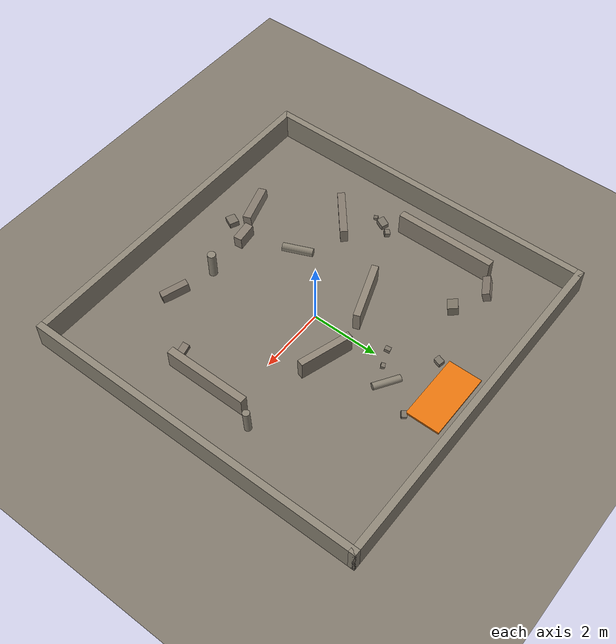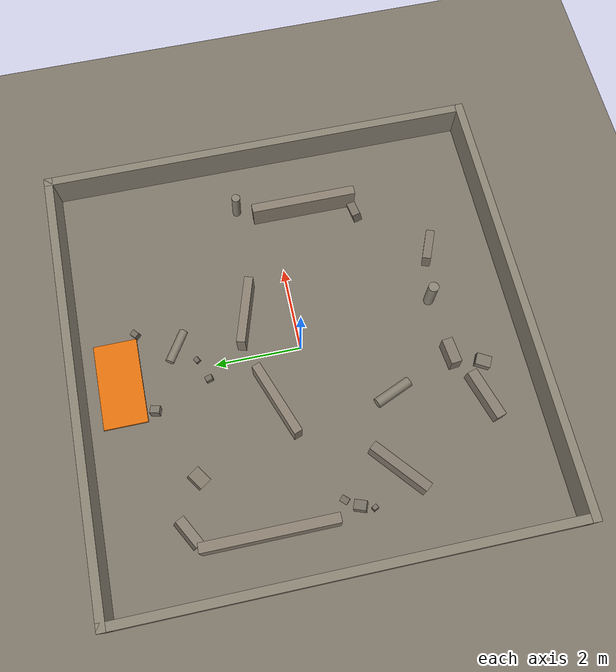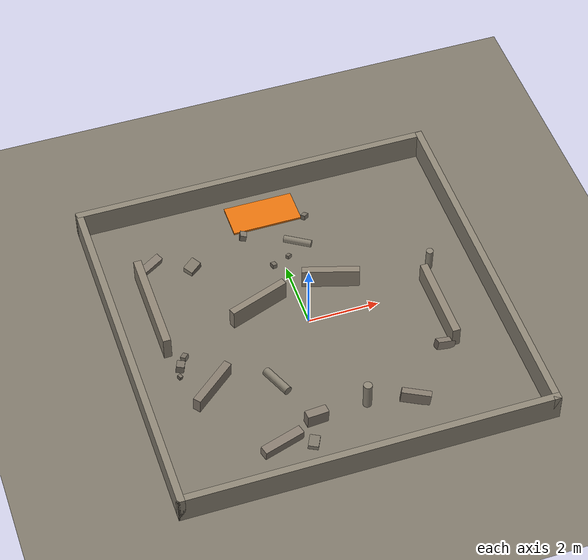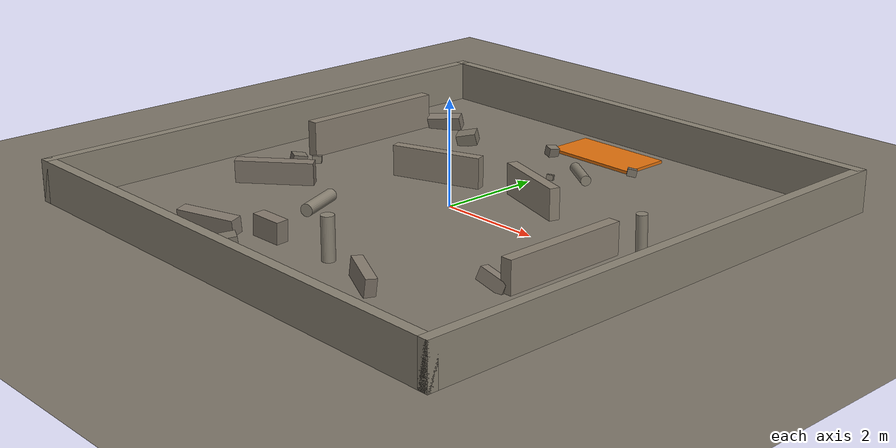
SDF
<?xml version="1.0" ?>
<!--
  earthquake_world.sdf
  Post-Earthquake Urban Scouting Environment
  Gazebo Fortress (Ignition) compatible
-->
<sdf version="1.8">
  <world name="earthquake_world">

    <!-- Physics -->
    <physics name="ode_physics" type="ode" default="true">
      <max_step_size>0.004</max_step_size>
      <real_time_factor>1.0</real_time_factor>
      <real_time_update_rate>250</real_time_update_rate>
    </physics>

    <!-- Plugins required for Fortress -->
    <plugin
      filename="ignition-gazebo-physics-system"
      name="ignition::gazebo::systems::Physics">
    </plugin>
    <plugin
      filename="ignition-gazebo-user-commands-system"
      name="ignition::gazebo::systems::UserCommands">
    </plugin>
    <plugin
      filename="ignition-gazebo-scene-broadcaster-system"
      name="ignition::gazebo::systems::SceneBroadcaster">
    </plugin>
    <plugin
      filename="ignition-gazebo-sensors-system"
      name="ignition::gazebo::systems::Sensors">
      <render_engine>ogre2</render_engine>
    </plugin>
    <plugin
      filename="ignition-gazebo-imu-system"
      name="ignition::gazebo::systems::Imu">
    </plugin>

    <!-- Scene -->
    <scene>
      <ambient>0.35 0.32 0.28 1.0</ambient>
      <background>0.55 0.50 0.42 1.0</background>
      <shadows>false</shadows>
    </scene>

    <!-- Sun -->
    <light name="sun" type="directional">
      <cast_shadows>false</cast_shadows>
      <pose>0 0 15 0 0 0</pose>
      <diffuse>0.8 0.75 0.65 1</diffuse>
      <specular>0.2 0.2 0.2 1</specular>
      <direction>-0.5 0.3 -0.8</direction>
      <attenuation>
        <range>1000</range>
        <constant>0.9</constant>
        <linear>0.01</linear>
        <quadratic>0.001</quadratic>
      </attenuation>
    </light>

    <light name="fill_light" type="directional">
      <cast_shadows>false</cast_shadows>
      <pose>0 0 10 0 0 0</pose>
      <diffuse>0.3 0.28 0.25 1</diffuse>
      <specular>0.05 0.05 0.04 1</specular>
      <direction>0.5 -0.3 -0.6</direction>
    </light>

    <!-- Ground plane -->
    <model name="ground_plane">
      <static>true</static>
      <link name="link">
        <collision name="collision">
          <geometry>
            <plane><normal>0 0 1</normal><size>100 100</size></plane>
          </geometry>
          <surface>
            <friction>
              <ode>
                <mu>0.8</mu>
                <mu2>0.8</mu2>
                <fdir1>0 0 0</fdir1>
                <slip1>0.0</slip1>
                <slip2>0.0</slip2>
              </ode>
              <torsional>
                <coefficient>1.0</coefficient>
                <patch_radius>0.0</patch_radius>
                <surface_radius>0.0</surface_radius>
                <use_patch_radius>true</use_patch_radius>
                <ode><slip>0.0</slip></ode>
              </torsional>
            </friction>
            <contact>
              <ode>
                <min_depth>0.001</min_depth>
                <kp>1000000.0</kp>
                <kd>1.0</kd>
              </ode>
            </contact>
          </surface>
        </collision>
        <visual name="visual">
          <geometry>
            <plane><normal>0 0 1</normal><size>100 100</size></plane>
          </geometry>
          <material>
            <ambient>0.45 0.42 0.38 1</ambient>
            <diffuse>0.50 0.47 0.42 1</diffuse>
          </material>
        </visual>
      </link>
    </model>

    <!-- ── PERIMETER WALLS ── -->
    <model name="wall_north">
      <static>true</static><pose>0 5.1 0.40 0 0 0</pose>
      <link name="link">
        <collision name="col"><geometry><box><size>10.4 0.20 0.80</size></box></geometry></collision>
        <visual name="vis"><geometry><box><size>10.4 0.20 0.80</size></box></geometry>
          <material><ambient>0.50 0.47 0.42 1</ambient><diffuse>0.55 0.52 0.46 1</diffuse></material></visual>
      </link>
    </model>

    <model name="wall_south">
      <static>true</static><pose>0 -5.1 0.40 0 0 0</pose>
      <link name="link">
        <collision name="col"><geometry><box><size>10.4 0.20 0.80</size></box></geometry></collision>
        <visual name="vis"><geometry><box><size>10.4 0.20 0.80</size></box></geometry>
          <material><ambient>0.50 0.47 0.42 1</ambient><diffuse>0.55 0.52 0.46 1</diffuse></material></visual>
      </link>
    </model>

    <model name="wall_west">
      <static>true</static><pose>-5.1 0 0.40 0 0 0</pose>
      <link name="link">
        <collision name="col"><geometry><box><size>0.20 10.4 0.80</size></box></geometry></collision>
        <visual name="vis"><geometry><box><size>0.20 10.4 0.80</size></box></geometry>
          <material><ambient>0.50 0.47 0.42 1</ambient><diffuse>0.55 0.52 0.46 1</diffuse></material></visual>
      </link>
    </model>

    <model name="wall_east">
      <static>true</static><pose>5.1 0 0.40 0 0 0</pose>
      <link name="link">
        <collision name="col"><geometry><box><size>0.20 10.4 0.80</size></box></geometry></collision>
        <visual name="vis"><geometry><box><size>0.20 10.4 0.80</size></box></geometry>
          <material><ambient>0.50 0.47 0.42 1</ambient><diffuse>0.55 0.52 0.46 1</diffuse></material></visual>
      </link>
    </model>

    <!-- ── OBSTACLE CLUSTER A ── -->
    <model name="wall_chunk_A1">
      <static>true</static><pose>-2.0 -3.8 0.15 0.1 0.0 0.3</pose>
      <link name="link">
        <collision name="col"><geometry><box><size>1.20 0.25 0.30</size></box></geometry></collision>
        <visual name="vis"><geometry><box><size>1.20 0.25 0.30</size></box></geometry>
          <material><ambient>0.48 0.44 0.39 1</ambient><diffuse>0.52 0.48 0.43 1</diffuse></material></visual>
      </link>
    </model>

    <model name="wall_chunk_A2">
      <static>true</static><pose>1.8 -3.5 0.18 -0.08 0.12 -0.4</pose>
      <link name="link">
        <collision name="col"><geometry><box><size>0.80 0.20 0.35</size></box></geometry></collision>
        <visual name="vis"><geometry><box><size>0.80 0.20 0.35</size></box></geometry>
          <material><ambient>0.46 0.43 0.38 1</ambient><diffuse>0.51 0.47 0.42 1</diffuse></material></visual>
      </link>
    </model>

    <model name="wall_chunk_A3">
      <static>true</static><pose>-1.2 -4.0 0.08 0.05 -0.1 1.1</pose>
      <link name="link">
        <collision name="col"><geometry><box><size>0.35 0.28 0.16</size></box></geometry></collision>
        <visual name="vis"><geometry><box><size>0.35 0.28 0.16</size></box></geometry>
          <material><ambient>0.44 0.41 0.37 1</ambient><diffuse>0.49 0.46 0.41 1</diffuse></material></visual>
      </link>
    </model>

    <!-- ── NARROW PASSAGE 1 ── -->
    <model name="pillar_B1">
      <static>true</static><pose>0.55 -3.20 0.40 0 0 0</pose>
      <link name="link">
        <collision name="col"><geometry><cylinder><radius>0.12</radius><length>0.80</length></cylinder></geometry></collision>
        <visual name="vis"><geometry><cylinder><radius>0.12</radius><length>0.80</length></cylinder></geometry>
          <material><ambient>0.50 0.47 0.42 1</ambient><diffuse>0.55 0.52 0.46 1</diffuse></material></visual>
      </link>
    </model>

    <model name="wall_chunk_B2">
      <static>true</static><pose>-0.90 -3.30 0.20 0 0.05 0.1</pose>
      <link name="link">
        <collision name="col"><geometry><box><size>0.60 0.25 0.40</size></box></geometry></collision>
        <visual name="vis"><geometry><box><size>0.60 0.25 0.40</size></box></geometry>
          <material><ambient>0.47 0.44 0.39 1</ambient><diffuse>0.52 0.48 0.43 1</diffuse></material></visual>
      </link>
    </model>

    <!-- ── CLUSTER B ── -->
    <model name="wall_chunk_C1">
      <static>true</static><pose>-3.20 -1.50 0.22 0.05 0 0.7</pose>
      <link name="link">
        <collision name="col"><geometry><box><size>1.50 0.22 0.44</size></box></geometry></collision>
        <visual name="vis"><geometry><box><size>1.50 0.22 0.44</size></box></geometry>
          <material><ambient>0.46 0.43 0.38 1</ambient><diffuse>0.51 0.47 0.42 1</diffuse></material></visual>
      </link>
    </model>

    <model name="pillar_C2_fallen">
      <static>true</static><pose>-1.50 -1.80 0.12 1.5708 0 0.4</pose>
      <link name="link">
        <collision name="col"><geometry><cylinder><radius>0.12</radius><length>0.90</length></cylinder></geometry></collision>
        <visual name="vis"><geometry><cylinder><radius>0.12</radius><length>0.90</length></cylinder></geometry>
          <material><ambient>0.50 0.47 0.42 1</ambient><diffuse>0.54 0.51 0.45 1</diffuse></material></visual>
      </link>
    </model>

    <model name="rubble_C3a">
      <static>true</static><pose>-3.80 -0.50 0.10 0.1 0.2 1.2</pose>
      <link name="link">
        <collision name="col"><geometry><box><size>0.28 0.22 0.20</size></box></geometry></collision>
        <visual name="vis"><geometry><box><size>0.28 0.22 0.20</size></box></geometry>
          <material><ambient>0.44 0.41 0.36 1</ambient><diffuse>0.48 0.45 0.40 1</diffuse></material></visual>
      </link>
    </model>

    <model name="rubble_C3b">
      <static>true</static><pose>-3.60 -0.20 0.07 -0.15 0.05 0.8</pose>
      <link name="link">
        <collision name="col"><geometry><box><size>0.18 0.15 0.14</size></box></geometry></collision>
        <visual name="vis"><geometry><box><size>0.18 0.15 0.14</size></box></geometry>
          <material><ambient>0.43 0.40 0.36 1</ambient><diffuse>0.47 0.44 0.39 1</diffuse></material></visual>
      </link>
    </model>

    <model name="rubble_C3c">
      <static>true</static><pose>-3.90 -0.80 0.05 0.2 -0.1 2.0</pose>
      <link name="link">
        <collision name="col"><geometry><box><size>0.12 0.10 0.10</size></box></geometry></collision>
        <visual name="vis"><geometry><box><size>0.12 0.10 0.10</size></box></geometry>
          <material><ambient>0.42 0.39 0.35 1</ambient><diffuse>0.46 0.43 0.38 1</diffuse></material></visual>
      </link>
    </model>

    <!-- ── CLUSTER C ── -->
    <model name="wall_remnant_D1">
      <static>true</static><pose>3.50 -0.80 0.30 0 0 0</pose>
      <link name="link">
        <collision name="col"><geometry><box><size>0.22 2.50 0.60</size></box></geometry></collision>
        <visual name="vis"><geometry><box><size>0.22 2.50 0.60</size></box></geometry>
          <material><ambient>0.50 0.47 0.42 1</ambient><diffuse>0.55 0.51 0.45 1</diffuse></material></visual>
      </link>
    </model>

    <model name="wall_chunk_D2">
      <static>true</static><pose>3.20 -2.00 0.12 -0.2 0.3 0.1</pose>
      <link name="link">
        <collision name="col"><geometry><box><size>0.55 0.20 0.24</size></box></geometry></collision>
        <visual name="vis"><geometry><box><size>0.55 0.20 0.24</size></box></geometry>
          <material><ambient>0.47 0.44 0.39 1</ambient><diffuse>0.52 0.48 0.43 1</diffuse></material></visual>
      </link>
    </model>

    <model name="pillar_D3">
      <static>true</static><pose>3.80 0.80 0.35 0.04 0 0</pose>
      <link name="link">
        <collision name="col"><geometry><cylinder><radius>0.10</radius><length>0.70</length></cylinder></geometry></collision>
        <visual name="vis"><geometry><cylinder><radius>0.10</radius><length>0.70</length></cylinder></geometry>
          <material><ambient>0.50 0.47 0.42 1</ambient><diffuse>0.54 0.51 0.45 1</diffuse></material></visual>
      </link>
    </model>

    <!-- ── NARROW PASSAGE 2 ── -->
    <model name="funnel_wall_E1">
      <static>true</static><pose>-1.20 0.80 0.30 0 0 0.35</pose>
      <link name="link">
        <collision name="col"><geometry><box><size>1.80 0.20 0.60</size></box></geometry></collision>
        <visual name="vis"><geometry><box><size>1.80 0.20 0.60</size></box></geometry>
          <material><ambient>0.50 0.47 0.42 1</ambient><diffuse>0.55 0.51 0.45 1</diffuse></material></visual>
      </link>
    </model>

    <model name="funnel_wall_E2">
      <static>true</static><pose>1.00 1.10 0.30 0 0 -0.30</pose>
      <link name="link">
        <collision name="col"><geometry><box><size>1.60 0.20 0.60</size></box></geometry></collision>
        <visual name="vis"><geometry><box><size>1.60 0.20 0.60</size></box></geometry>
          <material><ambient>0.50 0.47 0.42 1</ambient><diffuse>0.55 0.51 0.45 1</diffuse></material></visual>
      </link>
    </model>

    <!-- ── CLUSTER D ── -->
    <model name="pillar_F1_fallen">
      <static>true</static><pose>0.60 2.80 0.12 1.5708 0 1.0</pose>
      <link name="link">
        <collision name="col"><geometry><cylinder><radius>0.10</radius><length>0.80</length></cylinder></geometry></collision>
        <visual name="vis"><geometry><cylinder><radius>0.10</radius><length>0.80</length></cylinder></geometry>
          <material><ambient>0.50 0.47 0.42 1</ambient><diffuse>0.54 0.51 0.45 1</diffuse></material></visual>
      </link>
    </model>

    <model name="rubble_F2">
      <static>true</static><pose>-2.50 2.80 0.12 0.15 -0.2 0.6</pose>
      <link name="link">
        <collision name="col"><geometry><box><size>0.40 0.30 0.24</size></box></geometry></collision>
        <visual name="vis"><geometry><box><size>0.40 0.30 0.24</size></box></geometry>
          <material><ambient>0.45 0.42 0.37 1</ambient><diffuse>0.50 0.47 0.41 1</diffuse></material></visual>
      </link>
    </model>

    <model name="rubble_F3a">
      <static>true</static><pose>-0.30 2.20 0.06 0.1 0.15 1.8</pose>
      <link name="link">
        <collision name="col"><geometry><box><size>0.16 0.13 0.12</size></box></geometry></collision>
        <visual name="vis"><geometry><box><size>0.16 0.13 0.12</size></box></geometry>
          <material><ambient>0.43 0.40 0.36 1</ambient><diffuse>0.47 0.44 0.39 1</diffuse></material></visual>
      </link>
    </model>

    <model name="rubble_F3b">
      <static>true</static><pose>0.20 2.40 0.05 -0.2 0.08 0.5</pose>
      <link name="link">
        <collision name="col"><geometry><box><size>0.13 0.11 0.10</size></box></geometry></collision>
        <visual name="vis"><geometry><box><size>0.13 0.11 0.10</size></box></geometry>
          <material><ambient>0.43 0.40 0.36 1</ambient><diffuse>0.47 0.44 0.39 1</diffuse></material></visual>
      </link>
    </model>

    <!-- ── CLUSTER E ── -->
    <model name="wall_remnant_G1">
      <static>true</static><pose>-4.00 1.50 0.35 0 0 0</pose>
      <link name="link">
        <collision name="col"><geometry><box><size>0.22 3.00 0.70</size></box></geometry></collision>
        <visual name="vis"><geometry><box><size>0.22 3.00 0.70</size></box></geometry>
          <material><ambient>0.50 0.47 0.42 1</ambient><diffuse>0.55 0.51 0.45 1</diffuse></material></visual>
      </link>
    </model>

    <model name="wall_chunk_G2">
      <static>true</static><pose>-3.60 3.20 0.14 0.3 -0.1 0.5</pose>
      <link name="link">
        <collision name="col"><geometry><box><size>0.70 0.22 0.28</size></box></geometry></collision>
        <visual name="vis"><geometry><box><size>0.70 0.22 0.28</size></box></geometry>
          <material><ambient>0.47 0.44 0.39 1</ambient><diffuse>0.52 0.48 0.43 1</diffuse></material></visual>
      </link>
    </model>

    <!-- ── SURVIVOR ZONE ── -->
    <model name="survivor_zone_marker">
      <static>true</static><pose>0 4.20 0.03 0 0 0</pose>
      <link name="link">
        <collision name="col"><geometry><box><size>2.00 1.00 0.06</size></box></geometry></collision>
        <visual name="vis"><geometry><box><size>2.00 1.00 0.06</size></box></geometry>
          <material>
            <ambient>0.80 0.40 0.05 1</ambient>
            <diffuse>0.90 0.45 0.05 1</diffuse>
            <emissive>0.20 0.10 0.01 1</emissive>
          </material>
        </visual>
      </link>
    </model>

    <model name="rubble_sv_approach_1">
      <static>true</static><pose>-0.80 3.50 0.09 0.2 0.1 1.3</pose>
      <link name="link">
        <collision name="col"><geometry><box><size>0.22 0.18 0.18</size></box></geometry></collision>
        <visual name="vis"><geometry><box><size>0.22 0.18 0.18</size></box></geometry>
          <material><ambient>0.44 0.41 0.37 1</ambient><diffuse>0.49 0.46 0.41 1</diffuse></material></visual>
      </link>
    </model>

    <model name="rubble_sv_approach_2">
      <static>true</static><pose>1.10 3.70 0.07 -0.1 0.2 0.7</pose>
      <link name="link">
        <collision name="col"><geometry><box><size>0.18 0.14 0.14</size></box></geometry></collision>
        <visual name="vis"><geometry><box><size>0.18 0.14 0.14</size></box></geometry>
          <material><ambient>0.43 0.40 0.36 1</ambient><diffuse>0.47 0.44 0.39 1</diffuse></material></visual>
      </link>
    </model>

  </world>
</sdf>
